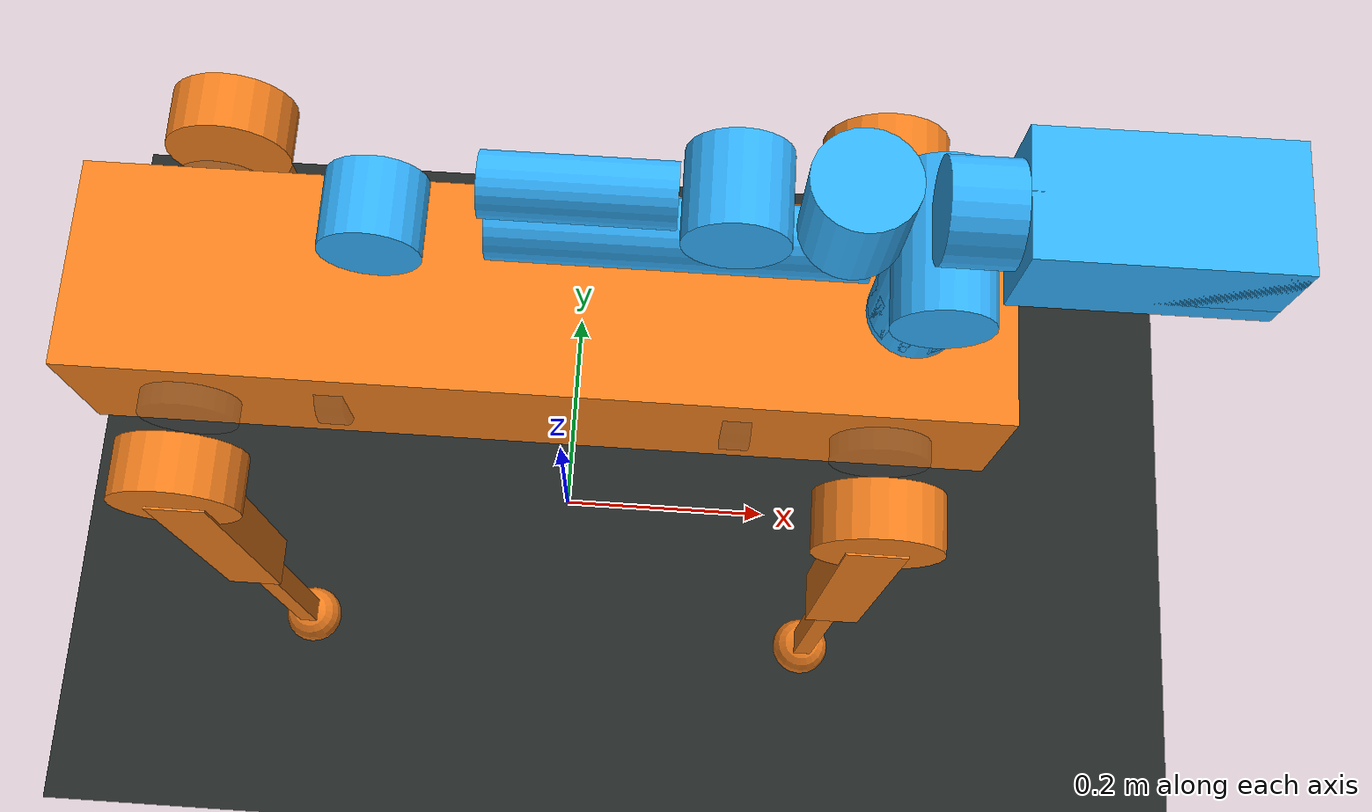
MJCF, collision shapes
<mujoco model="aliengo_scene">
  <compiler angle="radian" meshdir="." texturedir="." autolimits="true" />
  <option timestep="0.002" gravity="0 0 -9.81" integrator="implicitfast" cone="elliptic" iterations="80" tolerance="1e-10" />
  <statistic center="0 0 0.35" extent="2.6" />
  <visual>
    <headlight diffuse="0.55 0.55 0.55" ambient="0.14 0.14 0.14" specular="0.15 0.15 0.15" />
    <rgba haze="0.04 0.05 0.06 1" />
    <map znear="0.01" zfar="30" />
  </visual>
  <default>
    <geom margin="0.001" />
    <joint damping="2" armature="0.01" frictionloss="0.02" />
  </default>
  <asset>
    <texture name="skybox" type="skybox" builtin="gradient" rgb1="0.62 0.73 0.86" rgb2="0.06 0.08 0.11" width="512" height="512" />
    <texture name="ground_tex" type="2d" builtin="checker" rgb1="0.22 0.24 0.24" rgb2="0.28 0.30 0.30" width="512" height="512" />
    <material name="ground" texture="ground_tex" texrepeat="7 7" texuniform="true" rgba="0.55 0.56 0.54 1" roughness="0.92" specular="0.08" />
    <material name="aliengo_body" rgba="0.95 0.42 0.08 1" roughness="0.58" specular="0.22" />
    <material name="aliengo_leg" rgba="0.10 0.105 0.11 1" roughness="0.72" specular="0.16" />
    <material name="aliengo_collision" rgba="0.95 0.50 0.12 0.22" />
    <mesh name="aliengo_calf" file="aliengo_assets/calf.obj" smoothnormal="true" />
    <mesh name="aliengo_hip" file="aliengo_assets/hip.obj" smoothnormal="true" />
    <mesh name="aliengo_thigh" file="aliengo_assets/thigh.obj" smoothnormal="true" />
    <mesh name="aliengo_thigh_mirror" file="aliengo_assets/thigh_mirror.obj" smoothnormal="true" />
    <mesh name="aliengo_trunk" file="aliengo_assets/trunk.obj" smoothnormal="true" />
    <material name="z1_white" rgba="0.83 0.84 0.82 1" roughness="0.62" specular="0.18" />
    <material name="z1_dark" rgba="0.08 0.085 0.09 1" roughness="0.74" specular="0.12" />
    <mesh name="z1_GripperMover" file="z1_assets/z1_GripperMover.obj" smoothnormal="true" />
    <mesh name="z1_GripperStator" file="z1_assets/z1_GripperStator.obj" smoothnormal="true" />
    <mesh name="z1_Link00" file="z1_assets/z1_Link00.obj" smoothnormal="true" />
    <mesh name="z1_Link01" file="z1_assets/z1_Link01.obj" smoothnormal="true" />
    <mesh name="z1_Link02" file="z1_assets/z1_Link02.obj" smoothnormal="true" />
    <mesh name="z1_Link03" file="z1_assets/z1_Link03.obj" smoothnormal="true" />
    <mesh name="z1_Link04" file="z1_assets/z1_Link04.obj" smoothnormal="true" />
    <mesh name="z1_Link05" file="z1_assets/z1_Link05.obj" smoothnormal="true" />
    <mesh name="z1_Link06" file="z1_assets/z1_Link06.obj" smoothnormal="true" />
  </asset>
  <worldbody>
    <light name="key_light" directional="true" pos="-3 -4 6" dir="0.45 0.55 -1" diffuse="0.92 0.88 0.80" ambient="0.16 0.16 0.18" specular="0.22 0.22 0.22" />
    <geom name="floor" type="plane" size="5 5 0.05" material="ground" friction="0.9 0.02 0.01" contype="1" conaffinity="3" />
    <camera name="front_view" pos="2.2 -3.0 1.35" xyaxes="0.81 0.59 0 -0.22 0.30 0.93" fovy="45" />
    <camera name="side_view" pos="0 -3.3 0.95" xyaxes="1 0 0 0 0.27 0.96" fovy="45" />
    <camera name="top_mount_view" pos="-1.5 -2.2 1.8" xyaxes="0.83 -0.56 0 0.36 0.54 0.76" fovy="40" />
    <body name="trunk" pos="0 0 0.528">
      <freejoint name="floating_base" />
      <inertial pos="0.008811 0.003839 0.000273" mass="11.644" fullinertia="0.051944892 0.24693924 0.270948307 0.001703617 0.000235941 0.000119783" />
      <geom name="trunk_visual" type="mesh" mesh="aliengo_trunk" material="aliengo_body" contype="0" conaffinity="0" group="2" rgba="0.95 0.42 0.08 1" />
      <geom size="0.3235 0.075 0.056" type="box" rgba="0.95 0.50 0.12 0.20" group="3" friction="0.85 0.02 0.01" condim="3" solref="0.02 1" solimp="0.9 0.95 0.001" name="trunk_collision" />
      <geom size="0.0005 0.0005 0.0005" type="box" rgba="0.35 0.35 0.35 0.10" group="4" friction="0.85 0.02 0.01" condim="3" solref="0.02 1" solimp="0.9 0.95 0.001" name="base_marker_collision_disabled" contype="0" conaffinity="0" />
      <geom size="0.035 0.01" pos="0.139985 -0.051 0" quat="0.707107 0 0.707107 0" type="cylinder" rgba="0.35 0.35 0.35 0.10" group="4" friction="0.85 0.02 0.01" condim="3" solref="0.02 1" solimp="0.9 0.95 0.001" name="trunk_rotor_collision_disabled" contype="0" conaffinity="0" />
      <geom size="0.035 0.01" pos="0.139985 0.051 0" quat="0.707107 0 0.707107 0" type="cylinder" rgba="0.35 0.35 0.35 0.10" group="4" friction="0.85 0.02 0.01" condim="3" solref="0.02 1" solimp="0.9 0.95 0.001" name="trunk_rotor_collision_disabled_2" contype="0" conaffinity="0" />
      <geom size="0.035 0.01" pos="-0.139985 -0.051 0" quat="0.707107 0 0.707107 0" type="cylinder" rgba="0.35 0.35 0.35 0.10" group="4" friction="0.85 0.02 0.01" condim="3" solref="0.02 1" solimp="0.9 0.95 0.001" name="trunk_rotor_collision_disabled_3" contype="0" conaffinity="0" />
      <geom size="0.035 0.01" pos="-0.139985 0.051 0" quat="0.707107 0 0.707107 0" type="cylinder" rgba="0.35 0.35 0.35 0.10" group="4" friction="0.85 0.02 0.01" condim="3" solref="0.02 1" solimp="0.9 0.95 0.001" name="trunk_rotor_collision_disabled_4" contype="0" conaffinity="0" />
      <body name="FR_hip" pos="0.2407 -0.051 0">
        <inertial pos="-0.0186423 -0.0141103 -1.39762e-05" quat="0.0813782 0.701816 -0.0890737 0.702067" mass="2.139" diaginertia="0.00463042 0.00455328 0.00244029" />
        <joint name="FR_hip_joint" pos="0 0 0" axis="1 0 0" range="-1.22173 1.22173" actuatorfrcrange="-35.278 35.278" damping="2" armature="0.01" frictionloss="0.02" ref="-0.1" />
        <geom name="FR_hip_visual" type="mesh" mesh="aliengo_hip" material="aliengo_leg" contype="0" conaffinity="0" group="2" quat="0 1 0 0" rgba="0.08 0.085 0.09 1" />
        <geom size="0.046 0.0209" pos="0 -0.083 0" quat="0.707107 0.707107 0 0" type="cylinder" rgba="0.95 0.50 0.12 0.20" group="3" friction="0.85 0.02 0.01" condim="3" solref="0.02 1" solimp="0.9 0.95 0.001" name="FR_hip_collision" />
        <geom size="0.035 0.01" pos="0 -0.0298 0" quat="0.707107 0.707107 0 0" type="cylinder" rgba="0.35 0.35 0.35 0.10" group="4" friction="0.85 0.02 0.01" condim="3" solref="0.02 1" solimp="0.9 0.95 0.001" name="FR_hip_rotor_collision_disabled" contype="0" conaffinity="0" />
        <body name="FR_thigh" pos="0 -0.0868 0">
          <inertial pos="-0.00464705 0.00321323 -0.0228778" quat="0.693645 0.0210128 0.0253423 0.719564" mass="0.771" diaginertia="0.00687384 0.00674067 0.000463497" />
          <joint name="FR_thigh_joint" pos="0 0 0" axis="0 1 0" actuatorfrcrange="-35.278 35.278" damping="2" armature="0.01" frictionloss="0.02" range="-2.6 2.6" ref="0.8" />
          <geom name="FR_thigh_visual" type="mesh" mesh="aliengo_thigh_mirror" material="aliengo_leg" contype="0" conaffinity="0" group="2" rgba="0.08 0.085 0.09 1" />
          <geom size="0.125 0.0187 0.0215" pos="0 0 -0.125" quat="0.707107 0 0.707107 0" type="box" rgba="0.95 0.50 0.12 0.20" group="3" friction="0.85 0.02 0.01" condim="3" solref="0.02 1" solimp="0.9 0.95 0.001" name="FR_thigh_collision" />
          <geom size="0.035 0.01" pos="0 0.0997 0" quat="0.707107 0.707107 0 0" type="cylinder" rgba="0.35 0.35 0.35 0.10" group="4" friction="0.85 0.02 0.01" condim="3" solref="0.02 1" solimp="0.9 0.95 0.001" name="FR_thigh_rotor_collision_disabled" contype="0" conaffinity="0" />
          <body name="FR_calf" pos="0 0 -0.25">
            <inertial pos="0.00215606 4.88427e-05 -0.166671" quat="0.708049 0.000982931 0.00120829 0.706161" mass="0.267" diaginertia="0.00269606 0.00268354 5.47714e-05" />
            <joint name="FR_calf_joint" pos="0 0 0" axis="0 1 0" range="-2.77507 -0.645772" actuatorfrcrange="-44.4 44.4" damping="2" armature="0.01" frictionloss="0.02" ref="-1.5" />
            <geom name="FR_calf_visual" type="mesh" mesh="aliengo_calf" material="aliengo_leg" contype="0" conaffinity="0" group="2" rgba="0.08 0.085 0.09 1" />
            <geom size="0.125 0.0104 0.008" pos="0 0 -0.125" quat="0.707107 0 0.707107 0" type="box" rgba="0.95 0.50 0.12 0.20" group="3" friction="0.85 0.02 0.01" condim="3" solref="0.02 1" solimp="0.9 0.95 0.001" name="FR_calf_collision" />
            <geom size="0.0265" pos="0 0 -0.25" rgba="0.95 0.50 0.12 0.20" group="3" friction="0.85 0.02 0.01" condim="3" solref="0.02 1" solimp="0.9 0.95 0.001" name="FR_calf_foot_collision" />
          </body>
        </body>
      </body>
      <body name="FL_hip" pos="0.2407 0.051 0">
        <inertial pos="-0.0227104 0.0141103 -1.39762e-05" quat="0.399077 0.416621 0.571857 0.583219" mass="2.139" diaginertia="0.00429032 0.00427056 0.00234344" />
        <joint name="FL_hip_joint" pos="0 0 0" axis="1 0 0" range="-1.22173 1.22173" actuatorfrcrange="-35.278 35.278" damping="2" armature="0.01" frictionloss="0.02" ref="0.1" />
        <geom name="FL_hip_visual" type="mesh" mesh="aliengo_hip" material="aliengo_leg" contype="0" conaffinity="0" group="2" rgba="0.08 0.085 0.09 1" />
        <geom size="0.046 0.0209" pos="0 0.083 0" quat="0.707107 0.707107 0 0" type="cylinder" rgba="0.95 0.50 0.12 0.20" group="3" friction="0.85 0.02 0.01" condim="3" solref="0.02 1" solimp="0.9 0.95 0.001" name="FL_hip_collision" />
        <geom size="0.035 0.01" pos="0 0.0298 0" quat="0.707107 0.707107 0 0" type="cylinder" rgba="0.35 0.35 0.35 0.10" group="4" friction="0.85 0.02 0.01" condim="3" solref="0.02 1" solimp="0.9 0.95 0.001" name="FL_hip_rotor_collision_disabled" contype="0" conaffinity="0" />
        <body name="FL_thigh" pos="0 0.0868 0">
          <inertial pos="-0.00464705 -0.00321323 -0.0570163" quat="0.704048 0.0353148 0.0135585 0.709144" mass="0.771" diaginertia="0.00477446 0.00463106 0.000466743" />
          <joint name="FL_thigh_joint" pos="0 0 0" axis="0 1 0" actuatorfrcrange="-35.278 35.278" damping="2" armature="0.01" frictionloss="0.02" range="-2.6 2.6" ref="0.8" />
          <geom name="FL_thigh_visual" type="mesh" mesh="aliengo_thigh" material="aliengo_leg" contype="0" conaffinity="0" group="2" rgba="0.08 0.085 0.09 1" />
          <geom size="0.125 0.0187 0.0215" pos="0 0 -0.125" quat="0.707107 0 0.707107 0" type="box" rgba="0.95 0.50 0.12 0.20" group="3" friction="0.85 0.02 0.01" condim="3" solref="0.02 1" solimp="0.9 0.95 0.001" name="FL_thigh_collision" />
          <geom size="0.035 0.01" pos="0 -0.0997 0" quat="0.707107 0.707107 0 0" type="cylinder" rgba="0.35 0.35 0.35 0.10" group="4" friction="0.85 0.02 0.01" condim="3" solref="0.02 1" solimp="0.9 0.95 0.001" name="FL_thigh_rotor_collision_disabled" contype="0" conaffinity="0" />
          <body name="FL_calf" pos="0 0 -0.25">
            <inertial pos="0.00215606 4.88427e-05 -0.166671" quat="0.708049 0.000982931 0.00120829 0.706161" mass="0.267" diaginertia="0.00269606 0.00268354 5.47714e-05" />
            <joint name="FL_calf_joint" pos="0 0 0" axis="0 1 0" range="-2.77507 -0.645772" actuatorfrcrange="-44.4 44.4" damping="2" armature="0.01" frictionloss="0.02" ref="-1.5" />
            <geom name="FL_calf_visual" type="mesh" mesh="aliengo_calf" material="aliengo_leg" contype="0" conaffinity="0" group="2" rgba="0.08 0.085 0.09 1" />
            <geom size="0.125 0.0104 0.008" pos="0 0 -0.125" quat="0.707107 0 0.707107 0" type="box" rgba="0.95 0.50 0.12 0.20" group="3" friction="0.85 0.02 0.01" condim="3" solref="0.02 1" solimp="0.9 0.95 0.001" name="FL_calf_collision" />
            <geom size="0.0265" pos="0 0 -0.25" rgba="0.95 0.50 0.12 0.20" group="3" friction="0.85 0.02 0.01" condim="3" solref="0.02 1" solimp="0.9 0.95 0.001" name="FL_calf_foot_collision" />
          </body>
        </body>
      </body>
      <body name="RR_hip" pos="-0.2407 -0.051 0">
        <inertial pos="0.0227104 -0.0141103 -1.39762e-05" quat="0.416621 0.399077 0.583219 0.571857" mass="2.139" diaginertia="0.00429032 0.00427056 0.00234344" />
        <joint name="RR_hip_joint" pos="0 0 0" axis="1 0 0" range="-1.22173 1.22173" actuatorfrcrange="-35.278 35.278" damping="2" armature="0.01" frictionloss="0.02" ref="-0.1" />
        <geom name="RR_hip_visual" type="mesh" mesh="aliengo_hip" material="aliengo_leg" contype="0" conaffinity="0" group="2" quat="0 0 0 -1" rgba="0.08 0.085 0.09 1" />
        <geom size="0.046 0.0209" pos="0 -0.083 0" quat="0.707107 0.707107 0 0" type="cylinder" rgba="0.95 0.50 0.12 0.20" group="3" friction="0.85 0.02 0.01" condim="3" solref="0.02 1" solimp="0.9 0.95 0.001" name="RR_hip_collision" />
        <geom size="0.035 0.01" pos="0 -0.0298 0" quat="0.707107 0.707107 0 0" type="cylinder" rgba="0.35 0.35 0.35 0.10" group="4" friction="0.85 0.02 0.01" condim="3" solref="0.02 1" solimp="0.9 0.95 0.001" name="RR_hip_rotor_collision_disabled" contype="0" conaffinity="0" />
        <body name="RR_thigh" pos="0 -0.0868 0">
          <inertial pos="-0.00464705 0.00321323 -0.0228778" quat="0.693645 0.0210128 0.0253423 0.719564" mass="0.771" diaginertia="0.00687384 0.00674067 0.000463497" />
          <joint name="RR_thigh_joint" pos="0 0 0" axis="0 1 0" actuatorfrcrange="-35.278 35.278" damping="2" armature="0.01" frictionloss="0.02" range="-2.6 2.6" ref="1" />
          <geom name="RR_thigh_visual" type="mesh" mesh="aliengo_thigh_mirror" material="aliengo_leg" contype="0" conaffinity="0" group="2" rgba="0.08 0.085 0.09 1" />
          <geom size="0.125 0.0187 0.0215" pos="0 0 -0.125" quat="0.707107 0 0.707107 0" type="box" rgba="0.95 0.50 0.12 0.20" group="3" friction="0.85 0.02 0.01" condim="3" solref="0.02 1" solimp="0.9 0.95 0.001" name="RR_thigh_collision" />
          <geom size="0.035 0.01" pos="0 0.0997 0" quat="0.707107 0.707107 0 0" type="cylinder" rgba="0.35 0.35 0.35 0.10" group="4" friction="0.85 0.02 0.01" condim="3" solref="0.02 1" solimp="0.9 0.95 0.001" name="RR_thigh_rotor_collision_disabled" contype="0" conaffinity="0" />
          <body name="RR_calf" pos="0 0 -0.25">
            <inertial pos="0.00215606 4.88427e-05 -0.166671" quat="0.708049 0.000982931 0.00120829 0.706161" mass="0.267" diaginertia="0.00269606 0.00268354 5.47714e-05" />
            <joint name="RR_calf_joint" pos="0 0 0" axis="0 1 0" range="-2.77507 -0.645772" actuatorfrcrange="-44.4 44.4" damping="2" armature="0.01" frictionloss="0.02" ref="-1.5" />
            <geom name="RR_calf_visual" type="mesh" mesh="aliengo_calf" material="aliengo_leg" contype="0" conaffinity="0" group="2" rgba="0.08 0.085 0.09 1" />
            <geom size="0.125 0.0104 0.008" pos="0 0 -0.125" quat="0.707107 0 0.707107 0" type="box" rgba="0.95 0.50 0.12 0.20" group="3" friction="0.85 0.02 0.01" condim="3" solref="0.02 1" solimp="0.9 0.95 0.001" name="RR_calf_collision" />
            <geom size="0.0265" pos="0 0 -0.25" rgba="0.95 0.50 0.12 0.20" group="3" friction="0.85 0.02 0.01" condim="3" solref="0.02 1" solimp="0.9 0.95 0.001" name="RR_calf_foot_collision" />
          </body>
        </body>
      </body>
      <body name="RL_hip" pos="-0.2407 0.051 0">
        <inertial pos="0.0186423 0.0141103 -1.39762e-05" quat="0.0890737 0.702067 -0.0813782 0.701816" mass="2.139" diaginertia="0.00463042 0.00455328 0.00244029" />
        <joint name="RL_hip_joint" pos="0 0 0" axis="1 0 0" range="-1.22173 1.22173" actuatorfrcrange="-35.278 35.278" damping="2" armature="0.01" frictionloss="0.02" ref="0.1" />
        <geom name="RL_hip_visual" type="mesh" mesh="aliengo_hip" material="aliengo_leg" contype="0" conaffinity="0" group="2" quat="0 0 1 0" rgba="0.08 0.085 0.09 1" />
        <geom size="0.046 0.0209" pos="0 0.083 0" quat="0.707107 0.707107 0 0" type="cylinder" rgba="0.95 0.50 0.12 0.20" group="3" friction="0.85 0.02 0.01" condim="3" solref="0.02 1" solimp="0.9 0.95 0.001" name="RL_hip_collision" />
        <geom size="0.035 0.01" pos="0 0.0298 0" quat="0.707107 0.707107 0 0" type="cylinder" rgba="0.35 0.35 0.35 0.10" group="4" friction="0.85 0.02 0.01" condim="3" solref="0.02 1" solimp="0.9 0.95 0.001" name="RL_hip_rotor_collision_disabled" contype="0" conaffinity="0" />
        <body name="RL_thigh" pos="0 0.0868 0">
          <inertial pos="-0.00464705 -0.00321323 -0.0570163" quat="0.704048 0.0353148 0.0135585 0.709144" mass="0.771" diaginertia="0.00477446 0.00463106 0.000466743" />
          <joint name="RL_thigh_joint" pos="0 0 0" axis="0 1 0" actuatorfrcrange="-35.278 35.278" damping="2" armature="0.01" frictionloss="0.02" range="-2.6 2.6" ref="1" />
          <geom name="RL_thigh_visual" type="mesh" mesh="aliengo_thigh" material="aliengo_leg" contype="0" conaffinity="0" group="2" rgba="0.08 0.085 0.09 1" />
          <geom size="0.125 0.0187 0.0215" pos="0 0 -0.125" quat="0.707107 0 0.707107 0" type="box" rgba="0.95 0.50 0.12 0.20" group="3" friction="0.85 0.02 0.01" condim="3" solref="0.02 1" solimp="0.9 0.95 0.001" name="RL_thigh_collision" />
          <geom size="0.035 0.01" pos="0 -0.0997 0" quat="0.707107 0.707107 0 0" type="cylinder" rgba="0.35 0.35 0.35 0.10" group="4" friction="0.85 0.02 0.01" condim="3" solref="0.02 1" solimp="0.9 0.95 0.001" name="RL_thigh_rotor_collision_disabled" contype="0" conaffinity="0" />
          <body name="RL_calf" pos="0 0 -0.25">
            <inertial pos="0.00215606 4.88427e-05 -0.166671" quat="0.708049 0.000982931 0.00120829 0.706161" mass="0.267" diaginertia="0.00269606 0.00268354 5.47714e-05" />
            <joint name="RL_calf_joint" pos="0 0 0" axis="0 1 0" range="-2.77507 -0.645772" actuatorfrcrange="-44.4 44.4" damping="2" armature="0.01" frictionloss="0.02" ref="-1.5" />
            <geom name="RL_calf_visual" type="mesh" mesh="aliengo_calf" material="aliengo_leg" contype="0" conaffinity="0" group="2" rgba="0.08 0.085 0.09 1" />
            <geom size="0.125 0.0104 0.008" pos="0 0 -0.125" quat="0.707107 0 0.707107 0" type="box" rgba="0.95 0.50 0.12 0.20" group="3" friction="0.85 0.02 0.01" condim="3" solref="0.02 1" solimp="0.9 0.95 0.001" name="RL_calf_collision" />
            <geom size="0.0265" pos="0 0 -0.25" rgba="0.95 0.50 0.12 0.20" group="3" friction="0.85 0.02 0.01" condim="3" solref="0.02 1" solimp="0.9 0.95 0.001" name="RL_calf_foot_collision" />
          </body>
        </body>
      </body>
      <body name="z1_link00" pos="0.2535 0 0.056">
        <inertial pos="-0.00334984 -0.00013615 0.02495843" mass="0.47247481" fullinertia="0.00037937 0.00041521 0.00053066 -0.00000035 -0.00001037 -0.00000099" />
        <geom name="z1_link00_visual" type="mesh" mesh="z1_Link00" material="z1_white" rgba="0.83 0.84 0.82 1" contype="0" conaffinity="0" group="2" />
        <body name="z1_link01" pos="0 0 0.0585">
          <inertial pos="0.00000247 -0.00025198 0.02317169" mass="0.67332551" fullinertia="0.00128328 0.00071931 0.00083936 -0.00000006 -0.00000040 0.00000050" />
          <geom name="z1_link01_visual" type="mesh" mesh="z1_Link01" material="z1_dark" rgba="0.08 0.085 0.09 1" contype="0" conaffinity="0" group="2" />
          <body name="z1_link02" pos="0 0 0.045">
            <inertial pos="-0.11012601 0.00240029 0.00158266" mass="1.19132258" fullinertia="0.00102138 0.02429457 0.02466114 0.00062358 0.00000513 -0.00000210" />
            <geom name="z1_link02_visual" type="mesh" mesh="z1_Link02" material="z1_white" rgba="0.83 0.84 0.82 1" contype="0" conaffinity="0" group="2" />
            <body name="z1_link03" pos="-0.35 0 0">
              <inertial pos="0.10609208 -0.00541815 0.03476383" mass="0.83940874" fullinertia="0.00108061 0.00954238 0.00886621 -0.00008669 -0.00208102 -0.00001332" />
              <geom name="z1_link03_visual" type="mesh" mesh="z1_Link03" material="z1_white" rgba="0.83 0.84 0.82 1" contype="0" conaffinity="0" group="2" />
              <body name="z1_link04" pos="0.218 0 0.057">
                <inertial pos="0.04366681 0.00364738 -0.00170192" mass="0.56404563" fullinertia="0.00031576 0.00092996 0.00097912 0.00008130 0.00004091 -0.00000596" />
                <geom name="z1_link04_visual" type="mesh" mesh="z1_Link04" material="z1_white" rgba="0.83 0.84 0.82 1" contype="0" conaffinity="0" group="2" />
                <body name="z1_link05" pos="0.07 0 0">
                  <inertial pos="0.03121533 0 0.00646316" mass="0.38938492" fullinertia="0.00017605 0.00055896 0.00053860 0.00000040 0.00005689 -0.00000013" />
                  <geom name="z1_link05_visual" type="mesh" mesh="z1_Link05" material="z1_dark" rgba="0.08 0.085 0.09 1" contype="0" conaffinity="0" group="2" />
                  <body name="z1_link06" pos="0.0492 0 0">
                    <inertial pos="0.02415690 -0.00017355 -0.00143876" mass="0.28875807" fullinertia="0.00018328 0.00014750 0.00014680 0.00000122 0.00000054 0.00000008" />
                    <geom name="z1_link06_visual" type="mesh" mesh="z1_Link06" material="z1_white" rgba="0.83 0.84 0.82 1" contype="0" conaffinity="0" group="2" />
                    <body name="z1_gripper_stator" pos="0.051 0 0">
                      <inertial pos="0.04764427 -0.00035819 -0.00249162" mass="0.52603655" fullinertia="0.00038683 0.00068614 0.00066293 -0.00000359 0.00007662 0.00000209" />
                      <geom name="z1_gripper_stator_visual" type="mesh" mesh="z1_GripperStator" material="z1_white" rgba="0.83 0.84 0.82 1" contype="0" conaffinity="0" group="2" />
                      <body name="z1_gripper_mover" pos="0.049 0 0">
                        <inertial pos="0.01320633 0.00476708 0.00380534" mass="0.27621302" fullinertia="0.00017716 0.00026787 0.00035728 0.00001683 -0.00001786 0.00000262" />
                        <geom name="z1_gripper_mover_visual" type="mesh" mesh="z1_GripperMover" material="z1_dark" rgba="0.08 0.085 0.09 1" contype="0" conaffinity="0" group="2" />
                        <geom name="z1_gripper_mover_collision" type="box" size="0.0605 0.041 0.023625" pos="0.0395 0 0.002625" rgba="0.2 0.7 1.0 0.22" group="3" contype="2" conaffinity="0" friction="0.8 0.02 0.01" condim="3" solref="0.02 1" solimp="0.9 0.95 0.001" />
                      </body>
                      <geom name="z1_gripper_stator_collision" type="box" size="0.078 0.041 0.0344" pos="0.071 0 -0.001925" rgba="0.2 0.7 1.0 0.22" group="3" contype="2" conaffinity="0" friction="0.8 0.02 0.01" condim="3" solref="0.02 1" solimp="0.9 0.95 0.001" />
                    </body>
                    <geom name="z1_link06_collision" type="cylinder" size="0.0325 0.0255" pos="0.0255 0 0" rgba="0.2 0.7 1.0 0.22" group="3" contype="2" conaffinity="0" friction="0.8 0.02 0.01" condim="3" solref="0.02 1" solimp="0.9 0.95 0.001" quat="0.707106781 0 0.707106781 0" />
                  </body>
                </body>
                <geom name="z1_link04_collision" type="cylinder" size="0.0325 0.0335" pos="0.072 0 0" rgba="0.2 0.7 1.0 0.22" group="3" contype="2" conaffinity="0" friction="0.8 0.02 0.01" condim="3" solref="0.02 1" solimp="0.9 0.95 0.001" />
              </body>
              <geom name="z1_link03_arm_collision" type="cylinder" size="0.02 0.058" pos="0.128 0 0.055" rgba="0.2 0.7 1.0 0.22" group="3" contype="2" conaffinity="0" friction="0.8 0.02 0.01" condim="3" solref="0.02 1" solimp="0.9 0.95 0.001" quat="0.707106781 0 0.707106781 0" />
              <geom name="z1_link03_motor_collision" type="cylinder" size="0.0325 0.0295" pos="0.2205 0 0.055" rgba="0.2 0.7 1.0 0.22" group="3" contype="2" conaffinity="0" friction="0.8 0.02 0.01" condim="3" solref="0.02 1" solimp="0.9 0.95 0.001" quat="0.5 -0.5 0.5 0.5" />
            </body>
            <geom name="z1_link02_motor_a_collision" type="cylinder" size="0.0325 0.051" pos="0 0 0" rgba="0.2 0.7 1.0 0.22" group="3" contype="2" conaffinity="0" friction="0.8 0.02 0.01" condim="3" solref="0.02 1" solimp="0.9 0.95 0.001" quat="0.707106781 0.707106781 0 0" />
            <geom name="z1_link02_arm_collision" type="cylinder" size="0.0225 0.1175" pos="-0.1625 0 0" rgba="0.2 0.7 1.0 0.22" group="3" contype="2" conaffinity="0" friction="0.8 0.02 0.01" condim="3" solref="0.02 1" solimp="0.9 0.95 0.001" quat="0.707106781 0 0.707106781 0" />
            <geom name="z1_link02_motor_b_collision" type="cylinder" size="0.0325 0.0255" pos="-0.35 0 0" rgba="0.2 0.7 1.0 0.22" group="3" contype="2" conaffinity="0" friction="0.8 0.02 0.01" condim="3" solref="0.02 1" solimp="0.9 0.95 0.001" quat="0.707106781 0.707106781 0 0" />
          </body>
          <geom name="z1_link01_collision" type="cylinder" size="0.0325 0.051" pos="0 0 0" rgba="0.2 0.7 1.0 0.22" group="3" contype="2" conaffinity="0" friction="0.8 0.02 0.01" condim="3" solref="0.02 1" solimp="0.9 0.95 0.001" />
        </body>
        <geom name="z1_link00_collision" type="cylinder" size="0.0325 0.0255" pos="0 0 0.0255" rgba="0.2 0.7 1.0 0.22" group="3" contype="2" conaffinity="0" friction="0.8 0.02 0.01" condim="3" solref="0.02 1" solimp="0.9 0.95 0.001" />
      </body>
    </body>
  </worldbody>
  <actuator>
    <general name="FR_hip" joint="FR_hip_joint" gainprm="80" biasprm="-8 -80 -4" ctrlrange="-1.12173 1.32173" forcerange="-35.278 35.278" gaintype="fixed" biastype="affine" />
    <general name="FR_thigh" joint="FR_thigh_joint" gainprm="80" biasprm="64 -80 -4" ctrlrange="-3.4 1.8" forcerange="-35.278 35.278" gaintype="fixed" biastype="affine" />
    <general name="FR_calf" joint="FR_calf_joint" gainprm="100" biasprm="-150 -100 -5" ctrlrange="-1.27507 0.854228" forcerange="-44.4 44.4" gaintype="fixed" biastype="affine" />
    <general name="FL_hip" joint="FL_hip_joint" gainprm="80" biasprm="8 -80 -4" ctrlrange="-1.32173 1.12173" forcerange="-35.278 35.278" gaintype="fixed" biastype="affine" />
    <general name="FL_thigh" joint="FL_thigh_joint" gainprm="80" biasprm="64 -80 -4" ctrlrange="-3.4 1.8" forcerange="-35.278 35.278" gaintype="fixed" biastype="affine" />
    <general name="FL_calf" joint="FL_calf_joint" gainprm="100" biasprm="-150 -100 -5" ctrlrange="-1.27507 0.854228" forcerange="-44.4 44.4" gaintype="fixed" biastype="affine" />
    <general name="RR_hip" joint="RR_hip_joint" gainprm="80" biasprm="-8 -80 -4" ctrlrange="-1.12173 1.32173" forcerange="-35.278 35.278" gaintype="fixed" biastype="affine" />
    <general name="RR_thigh" joint="RR_thigh_joint" gainprm="80" biasprm="80 -80 -4" ctrlrange="-3.6 1.6" forcerange="-35.278 35.278" gaintype="fixed" biastype="affine" />
    <general name="RR_calf" joint="RR_calf_joint" gainprm="100" biasprm="-150 -100 -5" ctrlrange="-1.27507 0.854228" forcerange="-44.4 44.4" gaintype="fixed" biastype="affine" />
    <general name="RL_hip" joint="RL_hip_joint" gainprm="80" biasprm="8 -80 -4" ctrlrange="-1.32173 1.12173" forcerange="-35.278 35.278" gaintype="fixed" biastype="affine" />
    <general name="RL_thigh" joint="RL_thigh_joint" gainprm="80" biasprm="80 -80 -4" ctrlrange="-3.6 1.6" forcerange="-35.278 35.278" gaintype="fixed" biastype="affine" />
    <general name="RL_calf" joint="RL_calf_joint" gainprm="100" biasprm="-150 -100 -5" ctrlrange="-1.27507 0.854228" forcerange="-44.4 44.4" gaintype="fixed" biastype="affine" />
  </actuator>
  <keyframe>
    <key name="stand" qpos="0 0 0.528 1 0 0 0 -0.1 0.8 -1.5 0.1 0.8 -1.5 -0.1 1 -1.5 0.1 1 -1.5" ctrl="0 0 0 0 0 0 0 0 0 0 0 0" />
  </keyframe>
</mujoco>
